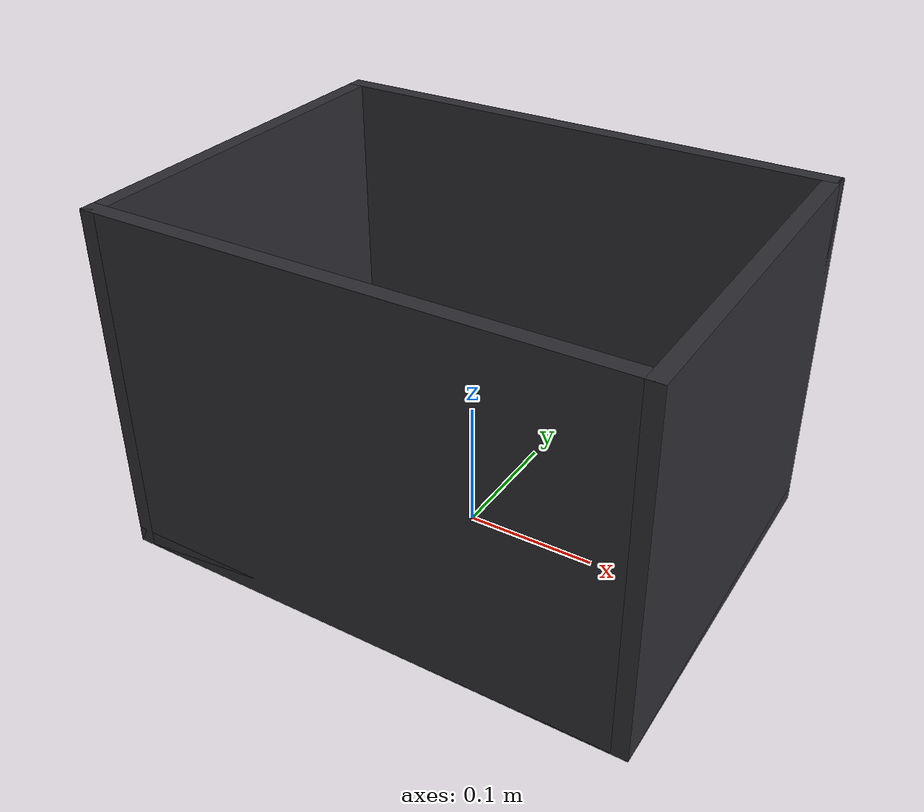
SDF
<?xml version="1.0"?>
<sdf version="1.9">
  <model name="robosub_bin_survey_repair">
    <static>true</static>
    <link name="floor">
      <pose>0 0 0.006 0 0 0</pose>
      <inertial>
        <pose>0 0 0 0 0 0</pose>
        <mass>1</mass>
        <inertia>
          <ixx>0.007512</ixx><ixy>0</ixy><ixz>0</ixz>
          <iyy>0.0133453</iyy><iyz>0</iyz>
          <izz>0.0208333</izz>
        </inertia>
      </inertial>
      <visual name="floor_visual">
        <pose>0 0 0 0 0 0</pose>
        <geometry><box><size>0.4 0.3 0.012</size></box></geometry>
        <material>
          <ambient>0.18 0.18 0.2 1</ambient>
          <diffuse>0.18 0.18 0.2 1</diffuse>
          <specular>0.2 0.2 0.2 1</specular>
          <emissive>0.045 0.045 0.05 1</emissive>
        </material>
      </visual>
      <collision name="floor_collision">
        <pose>0 0 0 0 0 0</pose>
        <geometry><box><size>0.4 0.3 0.012</size></box></geometry>
      </collision>
    </link>
    <link name="wall_x_pos">
      <pose>0.194 0 0.135 0 0 0</pose>
      <inertial>
        <pose>0 0 0 0 0 0</pose>
        <mass>0.5</mass>
        <inertia>
          <ixx>0.0067875</ixx><ixy>0</ixy><ixz>0</ixz>
          <iyy>0.0030435</iyy><iyz>0</iyz>
          <izz>0.003756</izz>
        </inertia>
      </inertial>
      <visual name="wall_x_pos_visual">
        <pose>0 0 0 0 0 0</pose>
        <geometry><box><size>0.012 0.3 0.27</size></box></geometry>
        <material>
          <ambient>0.18 0.18 0.2 1</ambient>
          <diffuse>0.18 0.18 0.2 1</diffuse>
          <specular>0.2 0.2 0.2 1</specular>
          <emissive>0.045 0.045 0.05 1</emissive>
        </material>
      </visual>
      <collision name="wall_x_pos_collision">
        <pose>0 0 0 0 0 0</pose>
        <geometry><box><size>0.012 0.3 0.27</size></box></geometry>
      </collision>
    </link>
    <link name="wall_x_neg">
      <pose>-0.194 0 0.135 0 0 0</pose>
      <inertial>
        <pose>0 0 0 0 0 0</pose>
        <mass>0.5</mass>
        <inertia>
          <ixx>0.0067875</ixx><ixy>0</ixy><ixz>0</ixz>
          <iyy>0.0030435</iyy><iyz>0</iyz>
          <izz>0.003756</izz>
        </inertia>
      </inertial>
      <visual name="wall_x_neg_visual">
        <pose>0 0 0 0 0 0</pose>
        <geometry><box><size>0.012 0.3 0.27</size></box></geometry>
        <material>
          <ambient>0.18 0.18 0.2 1</ambient>
          <diffuse>0.18 0.18 0.2 1</diffuse>
          <specular>0.2 0.2 0.2 1</specular>
          <emissive>0.045 0.045 0.05 1</emissive>
        </material>
      </visual>
      <collision name="wall_x_neg_collision">
        <pose>0 0 0 0 0 0</pose>
        <geometry><box><size>0.012 0.3 0.27</size></box></geometry>
      </collision>
    </link>
    <link name="wall_y_pos">
      <pose>0 0.144 0.135 0 0 0</pose>
      <inertial>
        <pose>0 0 0 0 0 0</pose>
        <mass>0.5</mass>
        <inertia>
          <ixx>0.0030435</ixx><ixy>0</ixy><ixz>0</ixz>
          <iyy>0.00970417</iyy><iyz>0</iyz>
          <izz>0.00667267</izz>
        </inertia>
      </inertial>
      <visual name="wall_y_pos_visual">
        <pose>0 0 0 0 0 0</pose>
        <geometry><box><size>0.4 0.012 0.27</size></box></geometry>
        <material>
          <ambient>0.18 0.18 0.2 1</ambient>
          <diffuse>0.18 0.18 0.2 1</diffuse>
          <specular>0.2 0.2 0.2 1</specular>
          <emissive>0.045 0.045 0.05 1</emissive>
        </material>
      </visual>
      <collision name="wall_y_pos_collision">
        <pose>0 0 0 0 0 0</pose>
        <geometry><box><size>0.4 0.012 0.27</size></box></geometry>
      </collision>
    </link>
    <link name="wall_y_neg">
      <pose>0 -0.144 0.135 0 0 0</pose>
      <inertial>
        <pose>0 0 0 0 0 0</pose>
        <mass>0.5</mass>
        <inertia>
          <ixx>0.0030435</ixx><ixy>0</ixy><ixz>0</ixz>
          <iyy>0.00970417</iyy><iyz>0</iyz>
          <izz>0.00667267</izz>
        </inertia>
      </inertial>
      <visual name="wall_y_neg_visual">
        <pose>0 0 0 0 0 0</pose>
        <geometry><box><size>0.4 0.012 0.27</size></box></geometry>
        <material>
          <ambient>0.18 0.18 0.2 1</ambient>
          <diffuse>0.18 0.18 0.2 1</diffuse>
          <specular>0.2 0.2 0.2 1</specular>
          <emissive>0.045 0.045 0.05 1</emissive>
        </material>
      </visual>
      <collision name="wall_y_neg_collision">
        <pose>0 0 0 0 0 0</pose>
        <geometry><box><size>0.4 0.012 0.27</size></box></geometry>
      </collision>
    </link>
    <link name="role_image">
      <pose>0 0 0.015 0 0 0</pose>
      <inertial>
        <pose>0 0 0 0 0 0</pose>
        <mass>0.05</mass>
        <inertia>
          <ixx>0.000183817</ixx><ixy>0</ixy><ixz>0</ixz>
          <iyy>0.000326733</iyy><iyz>0</iyz>
          <izz>0.000510417</izz>
        </inertia>
      </inertial>
      <visual name="role_image_visual">
        <pose>0 0 0 0 0 0</pose>
        <geometry><box><size>0.28 0.21 0.004</size></box></geometry>
        <material>
          <ambient>0.85 0.42 0.12 1</ambient>
          <diffuse>0.85 0.42 0.12 1</diffuse>
          <specular>0.2 0.2 0.2 1</specular>
          <emissive>0.2125 0.105 0.03 1</emissive>
        </material>
      </visual>
    </link>
  </model>
</sdf>
